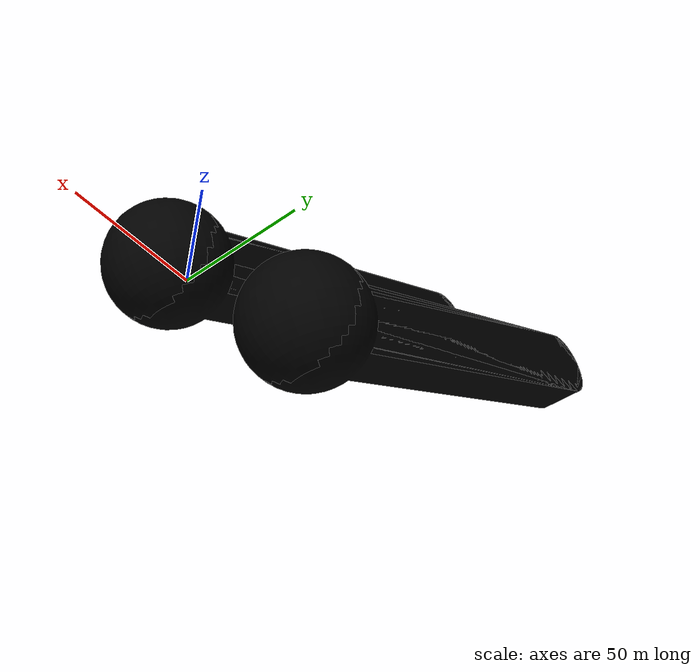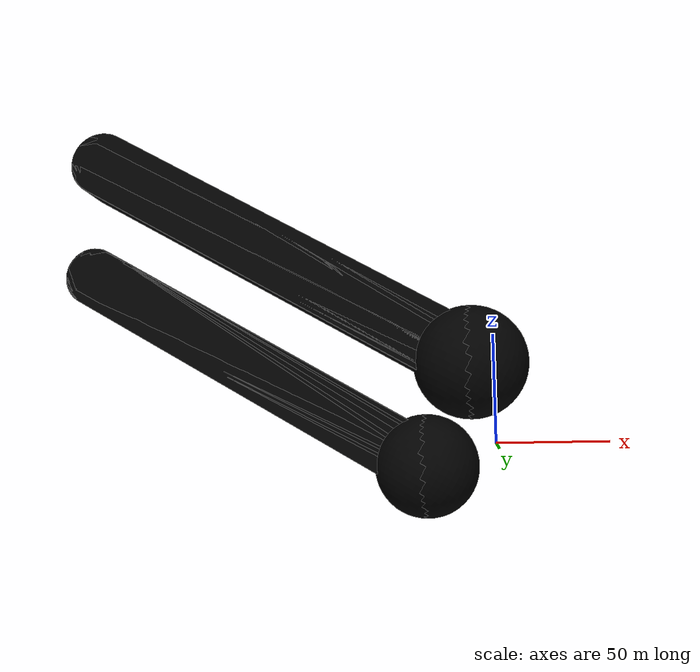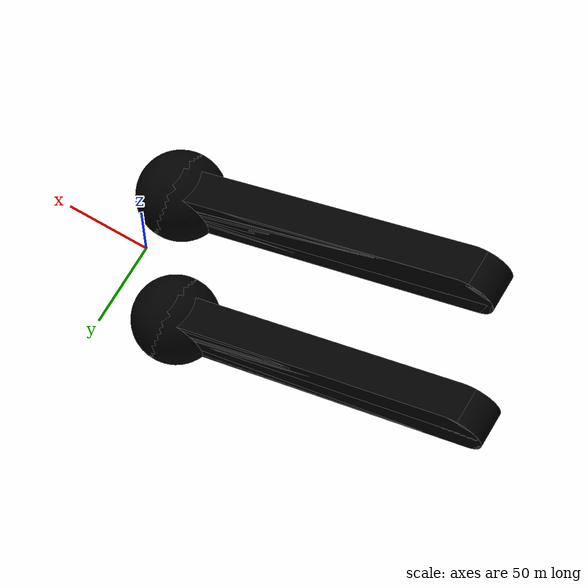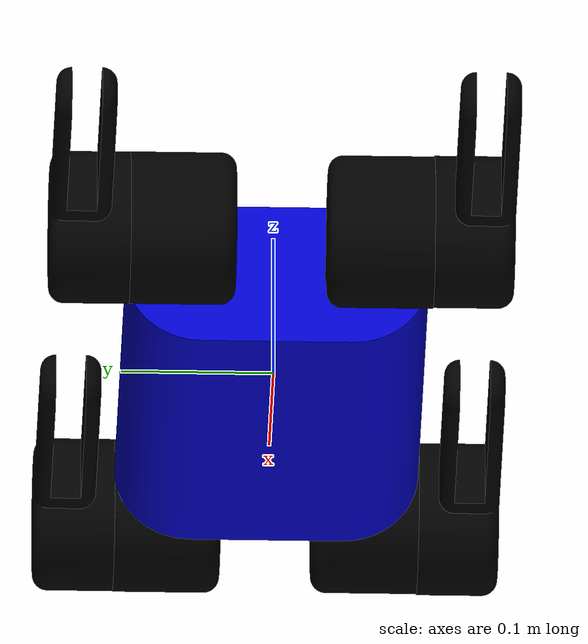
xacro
<?xml version="1.0"?>
<robot name="orthrus"
  xmlns:xacro="http://ros.org/wiki/xacro">

  <xacro:property name="meshes_folder" value="file:///$(find orthrus_description)/models/orthrus/meshes" />
  <xacro:property name="orthrus_config_path" value="file:///$(find orthrus_gazebo)/config/orthrus.yaml" />

  <xacro:include filename="orthrus_base.xacro"/>

  <xacro:HAA prefix="LF"/>
  <xacro:HFE prefix="LF"/>
  <xacro:KFE prefix="LF"/>
  <xacro:FOOT prefix="LF"/>

  <xacro:HAA prefix="LH"/>
  <xacro:HFE prefix="LH"/>
  <xacro:KFE prefix="LH"/>
  <xacro:FOOT prefix="LH"/>

  <xacro:HAA prefix="RF"/>
  <xacro:HFE prefix="RF"/>
  <xacro:KFE prefix="RF"/>
  <xacro:FOOT prefix="RF"/>

  <xacro:HAA prefix="RH"/>
  <xacro:HFE prefix="RH"/>
  <xacro:KFE prefix="RH"/>
  <xacro:FOOT prefix="RH"/>

  <gazebo reference="base">
    <sensor name="imu_sensor" type="imu">
      <always_on>1</always_on>
      <update_rate>1000</update_rate>
    </sensor>
  </gazebo>

  <gazebo>
    <plugin filename="libgazebo_ros2_control.so" name="gazebo_ros2_control">
      <parameters>$(find orthrus_gazebo)/config/orthrus.yaml</parameters>
    </plugin>
  </gazebo>
</robot>

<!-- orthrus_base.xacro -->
<robot name="orthrus_base"
  xmlns:xacro="http://ros.org/wiki/xacro">

  <material name="blue">
    <color rgba="0 0 0.8 1"/>
  </material>

  <material name="black">
    <color rgba="0 0 0 1"/>
  </material>

  <material name="white">
    <color rgba="1 1 1 1"/>
  </material>

  <link name="base">
    <visual>
      <origin xyz="-0.1385 -0.10 -0.05" rpy="${pi/2} 0 ${pi/2}" />
      <geometry>
        <mesh filename="${meshes_folder}/body.STL"/>
      </geometry>
      <material name="blue"/>
    </visual>
    <collision>
      <origin xyz="-0.1385 -0.10 -0.05" rpy="${pi/2} 0 ${pi/2}" />
      <geometry>
        <mesh filename="${meshes_folder}/body.STL"/>
      </geometry>
    </collision>
    <inertial>
      <origin xyz="-0.010977 0.000003 -0.000477" rpy="0 0 0" />
      <mass value="4.429"/>
      <inertia ixx="0.014923275" ixy="-0.000034837" ixz=" -0.000020438" iyy="0.050690680" iyz="0.000209222" izz="0.057629196" />
    </inertial>
  </link>

  <xacro:macro name="HAA" params="prefix">
    <link name="${prefix}_HAA_link">
      <visual>
        <origin xyz="-0.02 -0.05 -0.05" rpy="0 0 0" />
        <geometry>
          <mesh filename="${meshes_folder}/hip.STL"/>
        </geometry>
        <material name="black"/>
      </visual>
      <collision>
        <origin xyz="-0.02 -0.05 -0.05" rpy="0 0 0" />
        <geometry>
          <mesh filename="${meshes_folder}/hip.STL"/>
        </geometry>
      </collision>
      <inertial>
        <origin xyz="0.003391 0.000355 0.001734" rpy="0 0 0" />
        <mass value="0.67"/>
        <inertia ixx="-0.000849931" ixy="-0.000005571" ixz="0.000007520" iyy="0.000608499" iyz="-0.000003845" izz="0.000546025" />
      </inertial>
    </link>

    <joint name="${prefix}_HAA" type="revolute">
      <axis xyz="0 0 1"/>
      <parent link="base"/>
      <child link="${prefix}_HAA_link"/>
      <dynamics damping="0.4" friction="0.3"/>
      <limit effort="35.0" lower="-${pi/2}" upper="${pi/2}" velocity="${pi}"/>
      <xacro:if value="${prefix == 'LF'}">
        <origin xyz="0.20 0.05 0" rpy="${pi/2} ${pi} ${-pi/2}" />
      </xacro:if>
      <xacro:if value="${prefix == 'LH'}">
        <origin xyz="-0.20 0.05 0" rpy="-${pi/2} ${pi} ${-pi/2}" />
      </xacro:if>
      <xacro:if value="${prefix == 'RH'}">
        <origin xyz="-0.20 -0.05 0" rpy="${pi/2} ${pi} ${pi/2}" />
      </xacro:if>
      <xacro:if value="${prefix == 'RF'}">
        <origin xyz="0.20 -0.05 0" rpy="-${pi/2} ${pi} ${pi/2}" />
      </xacro:if>
    </joint>
  </xacro:macro>

  <xacro:macro name="HFE" params="prefix">
    <link name="${prefix}_HFE_link">
      <visual>
        <origin xyz="0 -0.2 -0.05" rpy="0 0 0" />
        <geometry>
          <mesh filename="${meshes_folder}/leg1.STL"/>
        </geometry>
        <material name="black"/>
      </visual>
      <collision>
        <origin xyz="0 -0.2 -0.05" rpy="0 0 0" />
        <geometry>
          <mesh filename="${meshes_folder}/leg1.STL"/>
        </geometry>
      </collision>
      <inertial>
        <xacro:if value="${prefix == 'LF'}">
          <origin xyz="0.013465 -0.021755 -0.000094" rpy="0 0 0" />
          <mass value="0.928"/>
          <inertia ixx="0.003597820" ixy="-0.000526099" ixz="-0.000000377" iyy="0.001042179" iyz="0.000060684" izz="0.003628939" />
        </xacro:if>
        <xacro:if value="${prefix == 'LH'}">
          <origin xyz="0.013465 -0.021755 -0.000094" rpy="0 0 0" />
          <mass value="0.928"/>
          <inertia ixx="0.003597820" ixy="-0.000526099" ixz="-0.000000377" iyy="0.001042179" iyz="0.000060684" izz="0.003628939" />
        </xacro:if>
        <xacro:if value="${prefix == 'RH'}">
          <origin xyz="0.013465 -0.021755 0.000094" rpy="0 0 0" />
          <mass value="0.928"/>
          <inertia ixx="0.003597820" ixy="-0.000526099" ixz="-0.000000377" iyy="0.001042179" iyz="0.000060684" izz="0.003628939" />
        </xacro:if>
        <xacro:if value="${prefix == 'RF'}">
          <origin xyz="0.013465 -0.021755 0.000094" rpy="0 0 0" />
          <mass value="0.928"/>
          <inertia ixx="0.003597820" ixy="-0.000526099" ixz="-0.000000377" iyy="0.001042179" iyz="0.000060684" izz="0.003628939" />
        </xacro:if>
      </inertial>
    </link>

    <joint name="${prefix}_HFE" type="revolute">
      <axis xyz="1 0 0"/>
      <parent link="${prefix}_HAA_link"/>
      <child link="${prefix}_HFE_link"/>
      <dynamics damping="0.4" friction="0.3"/>
      <limit effort="35.0" lower="-${pi*2/3}" upper="${pi*2/3}" velocity="${pi}"/>
      <xacro:if value="${prefix == 'LF'}">
        <origin xyz="0.05 0 0" rpy="-${pi/2} 0 0" />
      </xacro:if>
      <xacro:if value="${prefix == 'LH'}">
        <origin xyz="0.05 0 0" rpy="${pi/2} 0 0" />
      </xacro:if>
      <xacro:if value="${prefix == 'RH'}">
        <origin xyz="0.05 0 0" rpy="${pi/2} 0 0" />
      </xacro:if>
      <xacro:if value="${prefix == 'RF'}">
        <origin xyz="0.05 0 0" rpy="-${pi/2} 0 0" />
      </xacro:if>
    </joint>
  </xacro:macro>

  <xacro:macro name="KFE" params="prefix">
    <link name="${prefix}_KFE_link">
      <visual>
        <origin xyz="-0.025 -0.025 -0.225" rpy="0 0 0" />
        <geometry>
          <mesh filename="${meshes_folder}/leg2.STL"/>
        </geometry>
        <material name="black"/>
      </visual>
      <collision>
        <origin xyz="-0.025 -0.025 -0.225" rpy="0 0 0" />
        <geometry>
          <mesh filename="${meshes_folder}/leg2.STL"/>
        </geometry>
      </collision>
      <inertial>
        <xacro:if value="${prefix == 'LF'}">
          <origin xyz="-0.000162 -0.000597 -0.068453" rpy="0 0 0" />
          <mass value="0.187"/>
          <inertia ixx="0.001261336" ixy="0.000000011" ixz="-0.000001541" iyy="0.001259961" iyz="-0.0000059890" izz="0.000033267" />
        </xacro:if>
        <xacro:if value="${prefix == 'LH'}">
          <origin xyz="-0.000162 -0.000597 -0.068453" rpy="0 0 0" />
          <mass value="0.187"/>
          <inertia ixx="0.001261336" ixy="0.000000011" ixz="-0.000001541" iyy="0.001259961" iyz="-0.0000059890" izz="0.000033267" />
        </xacro:if>
        <xacro:if value="${prefix == 'RH'}">
          <origin xyz="-0.000162 0.000597 -0.068453" rpy="0 0 0" />
          <mass value="0.187"/>
          <inertia ixx="0.001261336" ixy="0.000000011" ixz="-0.000001541" iyy="0.001259961" iyz="-0.0000059890" izz="0.000033267" />
        </xacro:if>
        <xacro:if value="${prefix == 'RF'}">
          <origin xyz="-0.000162 0.000597 -0.068453" rpy="0 0 0" />
          <mass value="0.187"/>
          <inertia ixx="0.001261336" ixy="0.000000011" ixz="-0.000001541" iyy="0.001259961" iyz="-0.0000059890" izz="0.000033267" />
        </xacro:if>
      </inertial>
    </link>

    <joint name="${prefix}_KFE" type="revolute">
      <axis xyz="1 0 0"/>
      <parent link="${prefix}_HFE_link"/>
      <child link="${prefix}_KFE_link"/>
      <dynamics damping="0.4" friction="0.3"/>

      <xacro:if value="${prefix == 'LF'}">
        <origin xyz="0.035 -0.18 0" rpy="${pi*2/3} 0 0" />
        <limit effort="35.0" lower="-${pi*1/12}" upper="${pi*2/3}" velocity="${pi}"/>
      </xacro:if>
      <xacro:if value="${prefix == 'RF'}">
        <origin xyz="0.035 -0.18 0" rpy="${pi*1/3} 0 0" />
        <limit effort="35.0" lower="-${pi*2/3}" upper="${pi*1/12}" velocity="${pi}"/>
      </xacro:if>
      <xacro:if value="${prefix == 'RH'}">
        <origin xyz="0.035 -0.18 0" rpy="${pi*1/3} 0 0" />
        <limit effort="35.0" lower="-${pi*2/3}" upper="${pi*1/12}" velocity="${pi}"/>
      </xacro:if>
      <xacro:if value="${prefix == 'LH'}">
        <origin xyz="0.035 -0.18 0" rpy="${pi*2/3} 0 0" />
        <limit effort="35.0" lower="-${pi*1/12}" upper="${pi*2/3}" velocity="${pi}"/>
      </xacro:if>

    </joint>
  </xacro:macro>

  <xacro:macro name="FOOT" params="prefix">
    <link name="${prefix}_FOOT_link">
    </link>

    <joint name="${prefix}_FOOT" type="fixed">
      <axis xyz="1 0 0"/>
      <parent link="${prefix}_KFE_link"/>
      <child link="${prefix}_FOOT_link"/>
      <origin xyz="0.0 0.0 -0.2" rpy="0 0 0" />
    </joint>
  </xacro:macro>

  <xacro:macro name="ros2_HAA_joint" params="prefix">
    <joint name="${prefix}_HAA">
      <command_interface name="effort">
        <param name="min">-35</param>
        <param name="max">35</param>
      </command_interface>
      <state_interface name="position"/>
      <state_interface name="velocity"/>
      <state_interface name="effort"/>
    </joint>
  </xacro:macro>

  <xacro:macro name="ros2_HFE_joint" params="prefix">
    <joint name="${prefix}_HFE">
      <command_interface name="effort">
        <param name="min">-35</param>
        <param name="max">35</param>
      </command_interface>
      <state_interface name="position"/>
      <state_interface name="velocity"/>
      <state_interface name="effort"/>
    </joint>
  </xacro:macro>

  <xacro:macro name="ros2_KFE_joint" params="prefix">
    <joint name="${prefix}_KFE">
      <command_interface name="effort">
        <param name="min">-35</param>
        <param name="max">35</param>
      </command_interface>
      <state_interface name="position"/>
      <state_interface name="velocity"/>
      <state_interface name="effort"/>
    </joint>
  </xacro:macro>

  <xacro:macro name="orthrus_ros2_control" params="prefix name">

    <ros2_control name="${name}" type="system">
      <xacro:if value="${prefix == 'gazebo'}">
        <hardware>
          <plugin>gazebo_ros2_control/GazeboSystem</plugin>
        </hardware>
      </xacro:if>
      <xacro:if value="${prefix == 'real'}">
        <hardware>
          <plugin>orthrus_control/OrthrusSystemHardware</plugin>
        </hardware>
      </xacro:if>

      <xacro:ros2_HAA_joint prefix="RF"/>
      <xacro:ros2_HFE_joint prefix="RF"/>
      <xacro:ros2_KFE_joint prefix="RF"/>

      <xacro:ros2_HAA_joint prefix="LF"/>
      <xacro:ros2_HFE_joint prefix="LF"/>
      <xacro:ros2_KFE_joint prefix="LF"/>

      <xacro:ros2_HAA_joint prefix="RH"/>
      <xacro:ros2_HFE_joint prefix="RH"/>
      <xacro:ros2_KFE_joint prefix="RH"/>

      <xacro:ros2_HAA_joint prefix="LH"/>
      <xacro:ros2_HFE_joint prefix="LH"/>
      <xacro:ros2_KFE_joint prefix="LH"/>

      <sensor name="imu_sensor">
        <state_interface name="orientation.x"/>
        <state_interface name="orientation.y"/>
        <state_interface name="orientation.z"/>
        <state_interface name="orientation.w"/>
        <state_interface name="angular_velocity.x"/>
        <state_interface name="angular_velocity.y"/>
        <state_interface name="angular_velocity.z"/>
        <state_interface name="linear_acceleration.x"/>
        <state_interface name="linear_acceleration.y"/>
        <state_interface name="linear_acceleration.z"/>
      </sensor>

      <xacro:if value="${prefix == 'real'}">
        <sensor name="imu_lf">
          <state_interface name="orientation.x"/>
          <state_interface name="orientation.y"/>
          <state_interface name="orientation.z"/>
          <state_interface name="orientation.w"/>
        </sensor>
        <sensor name="imu_lh">
          <state_interface name="orientation.x"/>
          <state_interface name="orientation.y"/>
          <state_interface name="orientation.z"/>
          <state_interface name="orientation.w"/>
        </sensor>
        <sensor name="imu_rf">
          <state_interface name="orientation.x"/>
          <state_interface name="orientation.y"/>
          <state_interface name="orientation.z"/>
          <state_interface name="orientation.w"/>
        </sensor>
        <sensor name="imu_rh">
          <state_interface name="orientation.x"/>
          <state_interface name="orientation.y"/>
          <state_interface name="orientation.z"/>
          <state_interface name="orientation.w"/>
        </sensor>
      </xacro:if>

      <xacro:if value="${prefix == 'real'}">
        <gpio name="flag">
          <command_interface name="enable_power"/>
          <command_interface name="calibration_position"/>
          <command_interface name="calibration_encoder"/>
          <!-- Needed to know current state of the output -->
        </gpio>
      </xacro:if>

    </ros2_control>
  </xacro:macro>

</robot>
